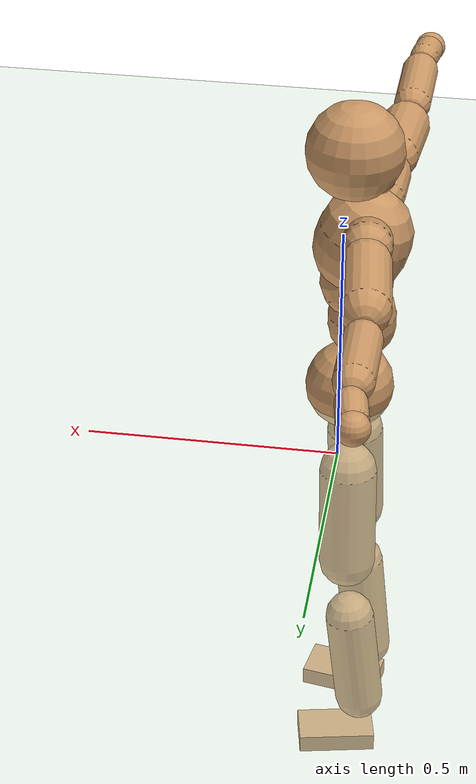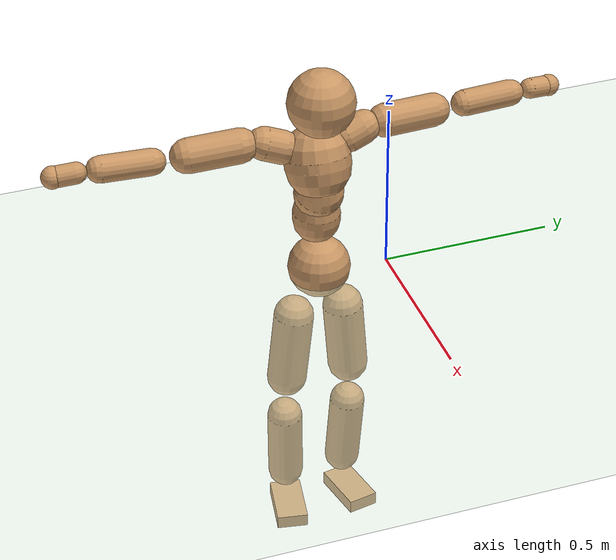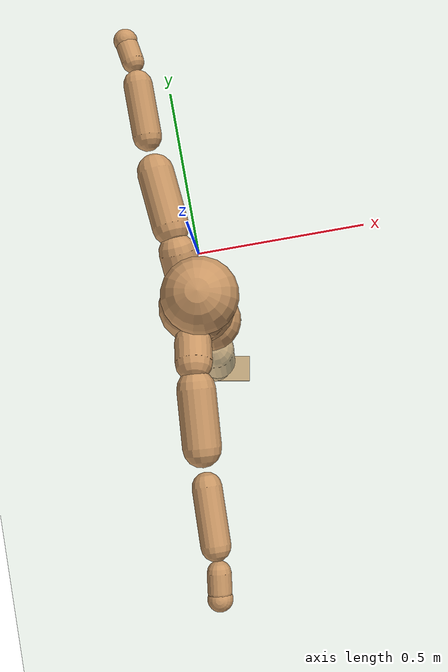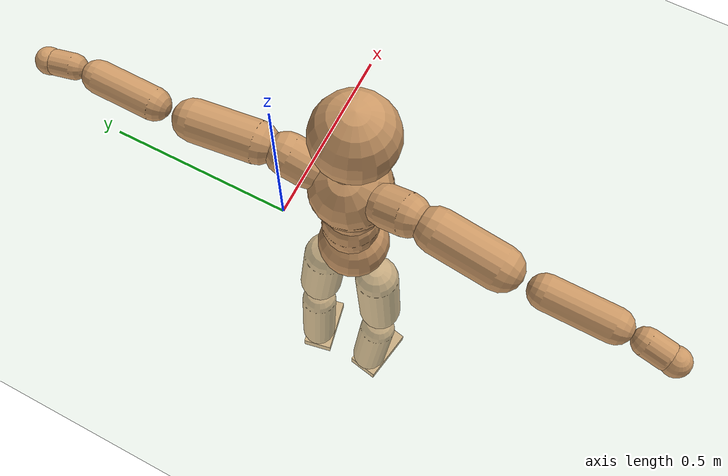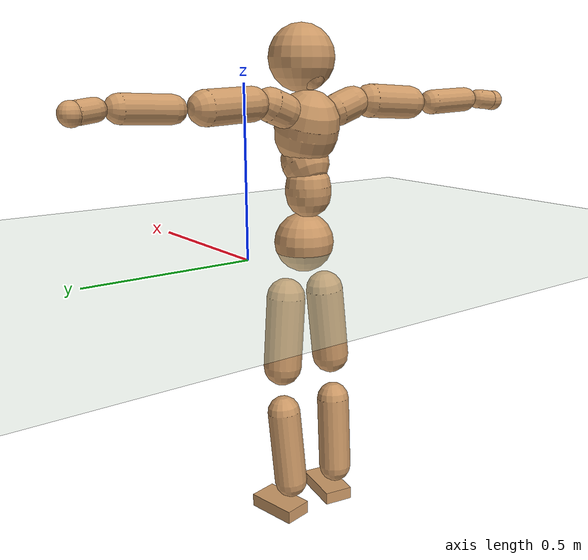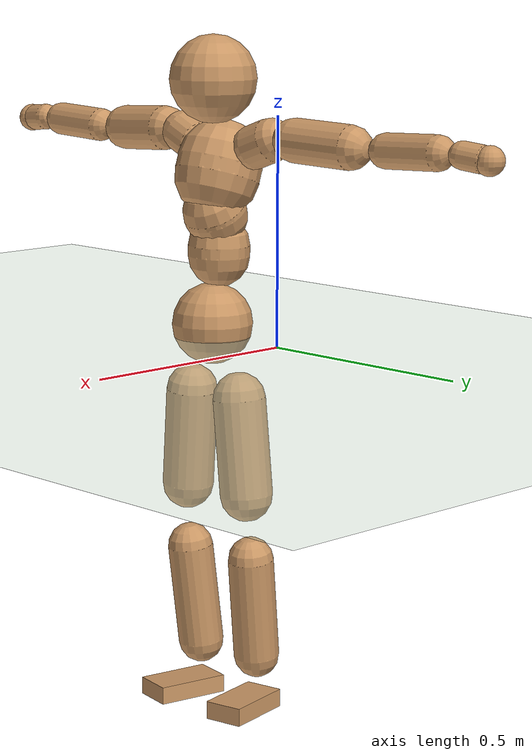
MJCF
<mujoco model="humanoid">
  <compiler coordinate="local"/>
  <default>
    <joint damping="0.0" armature="0.01" stiffness="0.0" limited="true"/>
    <geom conaffinity="1" condim="3" contype="7" margin="0.001" rgba="0.8 0.6 .4 1"/>
  </default>
  <asset>
    <texture type="skybox" builtin="gradient" rgb1=".4 .5 .6" rgb2="0 0 0" width="100" height="100"/>
    <texture builtin="flat" height="1278" mark="cross" markrgb="1 1 1" name="texgeom" random="0.01" rgb1="0.8 0.6 0.4" rgb2="0.8 0.6 0.4" type="cube" width="127"/>
    <texture builtin="checker" height="100" name="texplane" rgb1="0 0 0" rgb2="0.8 0.8 0.8" type="2d" width="100"/>
    <material name="MatPlane" reflectance="0.5" shininess="1" specular="1" texrepeat="60 60" texture="texplane"/>
    <material name="geom" texture="texgeom" texuniform="true"/>
  </asset>
  <worldbody>
    <light cutoff="100" diffuse="1 1 1" dir="-0 0 -1.3" directional="true" exponent="1" pos="0 0 1.3" specular=".1 .1 .1"/>
    <geom conaffinity="1" condim="3" name="floor" pos="0 0 0" rgba="0.8 0.9 0.8 1" size="100 100 .2" type="plane" material="MatPlane"/>
    <body name="Pelvis" pos="0.0005 -0.2044 0.028">
      <freejoint name="Pelvis"/>
      <geom type="sphere" contype="1" conaffinity="1" density="500" size="0.0906" pos="0.0000 0.0000 0.0000" name="Pelvis"/>
      <body name="L_Hip" pos="-0.008 0.0698 -0.0882">
        <joint name="L_Hip_x" type="hinge" pos="0 0 0" axis="1 0 0" stiffness="800" damping="80" armature="0.02" range="-180.0000 180.0000"/>
        <joint name="L_Hip_y" type="hinge" pos="0 0 0" axis="0 1 0" stiffness="800" damping="80" armature="0.02" range="-180.0000 180.0000"/>
        <joint name="L_Hip_z" type="hinge" pos="0 0 0" axis="0 0 1" stiffness="800" damping="80" armature="0.02" range="-180.0000 180.0000"/>
        <geom type="capsule" contype="1" conaffinity="1" density="500" fromto="-0.0016 0.0061 -0.0730 -0.0062 0.0245 -0.2919" size="0.059" name="L_Hip"/>
        <body name="L_Knee" pos="-0.0078 0.0307 -0.3649">
          <joint name="L_Knee_x" type="hinge" pos="0 0 0" axis="1 0 0" stiffness="800" damping="80" armature="0.02" range="-180.0000 180.0000"/>
          <joint name="L_Knee_y" type="hinge" pos="0 0 0" axis="0 1 0" stiffness="800" damping="80" armature="0.02" range="-180.0000 180.0000"/>
          <joint name="L_Knee_z" type="hinge" pos="0 0 0" axis="0 0 1" stiffness="800" damping="80" armature="0.02" range="-180.0000 180.0000"/>
          <geom type="capsule" contype="1" conaffinity="1" density="500" fromto="-0.0085 -0.0024 -0.0770 -0.0338 -0.0094 -0.3081" size="0.0514" name="L_Knee"/>
          <body name="L_Ankle" pos="-0.0423 -0.0118 -0.3852">
            <joint name="L_Ankle_x" type="hinge" pos="0 0 0" axis="1 0 0" stiffness="800" damping="80" armature="0.02" range="-180.0000 180.0000"/>
            <joint name="L_Ankle_y" type="hinge" pos="0 0 0" axis="0 1 0" stiffness="800" damping="80" armature="0.02" range="-180.0000 180.0000"/>
            <joint name="L_Ankle_z" type="hinge" pos="0 0 0" axis="0 0 1" stiffness="800" damping="80" armature="0.02" range="-180.0000 180.0000"/>
            <geom type="box" contype="1" conaffinity="1" density="500" pos="0.0571 0.0112 -0.0274" size="0.0814 0.0445 0.0203" quat="0.9953 0.0000 0.0000 0.0964" name="L_Ankle"/>
            <body name="L_Toe" pos="0.1142 0.0223 -0.0547">
              <joint name="L_Toe_x" type="hinge" pos="0 0 0" axis="1 0 0" stiffness="500" damping="50" armature="0.02" range="-180.0000 180.0000"/>
              <joint name="L_Toe_y" type="hinge" pos="0 0 0" axis="0 1 0" stiffness="500" damping="50" armature="0.02" range="-180.0000 180.0000"/>
              <joint name="L_Toe_z" type="hinge" pos="0 0 0" axis="0 0 1" stiffness="500" damping="50" armature="0.02" range="-180.0000 180.0000"/>
              <geom type="box" contype="1" conaffinity="1" density="500" pos="0.0000 0.0000 0.0267" size="0.0009 0.0022 0.001" quat="0.9947 0.0000 0.0000 0.1030" name="L_Toe"/>
            </body>
          </body>
        </body>
      </body>
      <body name="R_Hip" pos="-0.0045 -0.0676 -0.0876">
        <joint name="R_Hip_x" type="hinge" pos="0 0 0" axis="1 0 0" stiffness="800" damping="80" armature="0.02" range="-180.0000 180.0000"/>
        <joint name="R_Hip_y" type="hinge" pos="0 0 0" axis="0 1 0" stiffness="800" damping="80" armature="0.02" range="-180.0000 180.0000"/>
        <joint name="R_Hip_z" type="hinge" pos="0 0 0" axis="0 0 1" stiffness="800" damping="80" armature="0.02" range="-180.0000 180.0000"/>
        <geom type="capsule" contype="1" conaffinity="1" density="500" fromto="-0.0019 -0.0072 -0.0743 -0.0077 -0.0287 -0.2970" size="0.0583" name="R_Hip"/>
        <body name="R_Knee" pos="-0.0097 -0.0359 -0.3713">
          <joint name="R_Knee_x" type="hinge" pos="0 0 0" axis="1 0 0" stiffness="800" damping="80" armature="0.02" range="-180.0000 180.0000"/>
          <joint name="R_Knee_y" type="hinge" pos="0 0 0" axis="0 1 0" stiffness="800" damping="80" armature="0.02" range="-180.0000 180.0000"/>
          <joint name="R_Knee_z" type="hinge" pos="0 0 0" axis="0 0 1" stiffness="800" damping="80" armature="0.02" range="-180.0000 180.0000"/>
          <geom type="capsule" contype="1" conaffinity="1" density="500" fromto="-0.0082 0.0030 -0.0773 -0.0326 0.0118 -0.3093" size="0.0518" name="R_Knee"/>
          <body name="R_Ankle" pos="-0.0408 0.0148 -0.3866">
            <joint name="R_Ankle_x" type="hinge" pos="0 0 0" axis="1 0 0" stiffness="800" damping="80" armature="0.02" range="-180.0000 180.0000"/>
            <joint name="R_Ankle_y" type="hinge" pos="0 0 0" axis="0 1 0" stiffness="800" damping="80" armature="0.02" range="-180.0000 180.0000"/>
            <joint name="R_Ankle_z" type="hinge" pos="0 0 0" axis="0 0 1" stiffness="800" damping="80" armature="0.02" range="-180.0000 180.0000"/>
            <geom type="box" contype="1" conaffinity="1" density="500" pos="0.0589 -0.0107 -0.0232" size="0.083 0.0457 0.0199" quat="0.9960 0.0000 0.0000 -0.0896" name="R_Ankle"/>
            <body name="R_Toe" pos="0.1178 -0.0214 -0.0463">
              <joint name="R_Toe_x" type="hinge" pos="0 0 0" axis="1 0 0" stiffness="500" damping="50" armature="0.02" range="-180.0000 180.0000"/>
              <joint name="R_Toe_y" type="hinge" pos="0 0 0" axis="0 1 0" stiffness="500" damping="50" armature="0.02" range="-180.0000 180.0000"/>
              <joint name="R_Toe_z" type="hinge" pos="0 0 0" axis="0 0 1" stiffness="500" damping="50" armature="0.02" range="-180.0000 180.0000"/>
              <geom type="box" contype="1" conaffinity="1" density="500" pos="0.0000 0.0000 0.0246" size="0.0009 0.0023 0.0011" quat="0.9968 0.0000 0.0000 -0.0801" name="R_Toe"/>
            </body>
          </body>
        </body>
      </body>
      <body name="Torso" pos="-0.0207 -0.0019 0.1009">
        <joint name="Torso_x" type="hinge" pos="0 0 0" axis="1 0 0" stiffness="1000" damping="100" armature="0.02" range="-180.0000 180.0000"/>
        <joint name="Torso_y" type="hinge" pos="0 0 0" axis="0 1 0" stiffness="1000" damping="100" armature="0.02" range="-180.0000 180.0000"/>
        <joint name="Torso_z" type="hinge" pos="0 0 0" axis="0 0 1" stiffness="1000" damping="100" armature="0.02" range="-180.0000 180.0000"/>
        <geom type="capsule" contype="1" conaffinity="1" density="500" fromto="0.0001 0.0015 0.0721 0.0000 0.0010 0.0481" size="0.0689" name="Torso"/>
        <body name="Spine" pos="0.0001 0.0025 0.1202">
          <joint name="Spine_x" type="hinge" pos="0 0 0" axis="1 0 0" stiffness="1000" damping="100" armature="0.02" range="-180.0000 180.0000"/>
          <joint name="Spine_y" type="hinge" pos="0 0 0" axis="0 1 0" stiffness="1000" damping="100" armature="0.02" range="-180.0000 180.0000"/>
          <joint name="Spine_z" type="hinge" pos="0 0 0" axis="0 0 1" stiffness="1000" damping="100" armature="0.02" range="-180.0000 180.0000"/>
          <geom type="capsule" contype="1" conaffinity="1" density="500" fromto="0.0156 0.0012 0.0288 0.0104 0.0008 0.0192" size="0.0712" name="Spine"/>
          <body name="Chest" pos="0.026 0.002 0.048">
            <joint name="Chest_x" type="hinge" pos="0 0 0" axis="1 0 0" stiffness="1000" damping="100" armature="0.02" range="-180.0000 180.0000"/>
            <joint name="Chest_y" type="hinge" pos="0 0 0" axis="0 1 0" stiffness="1000" damping="100" armature="0.02" range="-180.0000 180.0000"/>
            <joint name="Chest_z" type="hinge" pos="0 0 0" axis="0 0 1" stiffness="1000" damping="100" armature="0.02" range="-180.0000 180.0000"/>
            <geom type="capsule" contype="1" conaffinity="1" density="500" fromto="-0.0278 -0.0007 0.0892 -0.0185 -0.0005 0.0595" size="0.0948" name="Chest"/>
            <body name="Neck" pos="-0.0542 -0.0012 0.2101">
              <joint name="Neck_x" type="hinge" pos="0 0 0" axis="1 0 0" stiffness="500" damping="50" armature="0.02" range="-180.0000 180.0000"/>
              <joint name="Neck_y" type="hinge" pos="0 0 0" axis="0 1 0" stiffness="500" damping="50" armature="0.02" range="-180.0000 180.0000"/>
              <joint name="Neck_z" type="hinge" pos="0 0 0" axis="0 0 1" stiffness="500" damping="50" armature="0.02" range="-180.0000 180.0000"/>
              <geom type="capsule" contype="1" conaffinity="1" density="500" fromto="0.0101 0.0010 0.0122 0.0404 0.0038 0.0487" size="0.0405" name="Neck"/>
              <body name="Head" pos="0.0505 0.0048 0.0608">
                <joint name="Head_x" type="hinge" pos="0 0 0" axis="1 0 0" stiffness="500" damping="50" armature="0.02" range="-180.0000 180.0000"/>
                <joint name="Head_y" type="hinge" pos="0 0 0" axis="0 1 0" stiffness="500" damping="50" armature="0.02" range="-180.0000 180.0000"/>
                <joint name="Head_z" type="hinge" pos="0 0 0" axis="0 0 1" stiffness="500" damping="50" armature="0.02" range="-180.0000 180.0000"/>
                <geom type="sphere" contype="1" conaffinity="1" density="500" size="0.0970" pos="0.0000 0.0000 0.0000" name="Head"/>
              </body>
            </body>
            <body name="L_Thorax" pos="-0.0398 0.0742 0.1191">
              <joint name="L_Thorax_x" type="hinge" pos="0 0 0" axis="1 0 0" stiffness="500" damping="50" armature="0.02" range="-180.0000 180.0000"/>
              <joint name="L_Thorax_y" type="hinge" pos="0 0 0" axis="0 1 0" stiffness="500" damping="50" armature="0.02" range="-180.0000 180.0000"/>
              <joint name="L_Thorax_z" type="hinge" pos="0 0 0" axis="0 0 1" stiffness="500" damping="50" armature="0.02" range="-180.0000 180.0000"/>
              <geom type="capsule" contype="1" conaffinity="1" density="500" fromto="-0.0012 0.0167 0.0061 -0.0049 0.0666 0.0245" size="0.0488" name="L_Thorax"/>
              <body name="L_Shoulder" pos="-0.0061 0.0833 0.0306">
                <joint name="L_Shoulder_x" type="hinge" pos="0 0 0" axis="1 0 0" stiffness="500" damping="50" armature="0.02" range="-720.0000 720.0000"/>
                <joint name="L_Shoulder_y" type="hinge" pos="0 0 0" axis="0 1 0" stiffness="500" damping="50" armature="0.02" range="-720.0000 720.0000"/>
                <joint name="L_Shoulder_z" type="hinge" pos="0 0 0" axis="0 0 1" stiffness="500" damping="50" armature="0.02" range="-720.0000 720.0000"/>
                <geom type="capsule" contype="1" conaffinity="1" density="500" fromto="-0.0049 0.0499 -0.0020 -0.0197 0.1997 -0.0079" size="0.0483" name="L_Shoulder"/>
                <body name="L_Elbow" pos="-0.0246 0.2497 -0.0099">
                  <joint name="L_Elbow_x" type="hinge" pos="0 0 0" axis="1 0 0" stiffness="500" damping="50" armature="0.02" range="-720.0000 720.0000"/>
                  <joint name="L_Elbow_y" type="hinge" pos="0 0 0" axis="0 1 0" stiffness="500" damping="50" armature="0.02" range="-720.0000 720.0000"/>
                  <joint name="L_Elbow_z" type="hinge" pos="0 0 0" axis="0 0 1" stiffness="500" damping="50" armature="0.02" range="-720.0000 720.0000"/>
                  <geom type="capsule" contype="1" conaffinity="1" density="500" fromto="-0.0002 0.0468 0.0018 -0.0007 0.1871 0.0073" size="0.0378" name="L_Elbow"/>
                  <body name="L_Wrist" pos="-0.0008 0.2339 0.0091">
                    <joint name="L_Wrist_x" type="hinge" pos="0 0 0" axis="1 0 0" stiffness="300" damping="30" armature="0.02" range="-180.0000 180.0000"/>
                    <joint name="L_Wrist_y" type="hinge" pos="0 0 0" axis="0 1 0" stiffness="300" damping="30" armature="0.02" range="-180.0000 180.0000"/>
                    <joint name="L_Wrist_z" type="hinge" pos="0 0 0" axis="0 0 1" stiffness="300" damping="30" armature="0.02" range="-180.0000 180.0000"/>
                    <geom type="capsule" contype="1" conaffinity="1" density="500" fromto="-0.0026 0.0155 -0.0019 -0.0103 0.0620 -0.0074" size="0.0294" name="L_Wrist"/>
                    <body name="L_Hand" pos="-0.0129 0.0776 -0.0093">
                      <joint name="L_Hand_x" type="hinge" pos="0 0 0" axis="1 0 0" stiffness="300" damping="30" armature="0.02" range="-180.0000 180.0000"/>
                      <joint name="L_Hand_y" type="hinge" pos="0 0 0" axis="0 1 0" stiffness="300" damping="30" armature="0.02" range="-180.0000 180.0000"/>
                      <joint name="L_Hand_z" type="hinge" pos="0 0 0" axis="0 0 1" stiffness="300" damping="30" armature="0.02" range="-180.0000 180.0000"/>
                      <geom type="sphere" contype="1" conaffinity="1" density="500" size="0.0313" pos="0.0000 0.0000 0.0000" name="L_Hand"/>
                    </body>
                  </body>
                </body>
              </body>
            </body>
            <body name="R_Thorax" pos="-0.0448 -0.0765 0.117">
              <joint name="R_Thorax_x" type="hinge" pos="0 0 0" axis="1 0 0" stiffness="500" damping="50" armature="0.02" range="-180.0000 180.0000"/>
              <joint name="R_Thorax_y" type="hinge" pos="0 0 0" axis="0 1 0" stiffness="500" damping="50" armature="0.02" range="-180.0000 180.0000"/>
              <joint name="R_Thorax_z" type="hinge" pos="0 0 0" axis="0 0 1" stiffness="500" damping="50" armature="0.02" range="-180.0000 180.0000"/>
              <geom type="capsule" contype="1" conaffinity="1" density="500" fromto="-0.0019 -0.0175 0.0067 -0.0076 -0.0701 0.0266" size="0.0483" name="R_Thorax"/>
              <body name="R_Shoulder" pos="-0.0094 -0.0876 0.0333">
                <joint name="R_Shoulder_x" type="hinge" pos="0 0 0" axis="1 0 0" stiffness="500" damping="50" armature="0.02" range="-720.0000 720.0000"/>
                <joint name="R_Shoulder_y" type="hinge" pos="0 0 0" axis="0 1 0" stiffness="500" damping="50" armature="0.02" range="-720.0000 720.0000"/>
                <joint name="R_Shoulder_z" type="hinge" pos="0 0 0" axis="0 0 1" stiffness="500" damping="50" armature="0.02" range="-720.0000 720.0000"/>
                <geom type="capsule" contype="1" conaffinity="1" density="500" fromto="-0.0037 -0.0493 -0.0028 -0.0148 -0.1974 -0.0111" size="0.0503" name="R_Shoulder"/>
                <body name="R_Elbow" pos="-0.0185 -0.2467 -0.0139">
                  <joint name="R_Elbow_x" type="hinge" pos="0 0 0" axis="1 0 0" stiffness="500" damping="50" armature="0.02" range="-720.0000 720.0000"/>
                  <joint name="R_Elbow_y" type="hinge" pos="0 0 0" axis="0 1 0" stiffness="500" damping="50" armature="0.02" range="-720.0000 720.0000"/>
                  <joint name="R_Elbow_z" type="hinge" pos="0 0 0" axis="0 0 1" stiffness="500" damping="50" armature="0.02" range="-720.0000 720.0000"/>
                  <geom type="capsule" contype="1" conaffinity="1" density="500" fromto="-0.0010 -0.0490 0.0018 -0.0039 -0.1960 0.0071" size="0.0383" name="R_Elbow"/>
                  <body name="R_Wrist" pos="-0.0049 -0.245 0.0089">
                    <joint name="R_Wrist_x" type="hinge" pos="0 0 0" axis="1 0 0" stiffness="300" damping="30" armature="0.02" range="-180.0000 180.0000"/>
                    <joint name="R_Wrist_y" type="hinge" pos="0 0 0" axis="0 1 0" stiffness="300" damping="30" armature="0.02" range="-180.0000 180.0000"/>
                    <joint name="R_Wrist_z" type="hinge" pos="0 0 0" axis="0 0 1" stiffness="300" damping="30" armature="0.02" range="-180.0000 180.0000"/>
                    <geom type="capsule" contype="1" conaffinity="1" density="500" fromto="-0.0021 -0.0160 -0.0014 -0.0083 -0.0640 -0.0058" size="0.0307" name="R_Wrist"/>
                    <body name="R_Hand" pos="-0.0104 -0.0801 -0.0072">
                      <joint name="R_Hand_x" type="hinge" pos="0 0 0" axis="1 0 0" stiffness="300" damping="30" armature="0.02" range="-180.0000 180.0000"/>
                      <joint name="R_Hand_y" type="hinge" pos="0 0 0" axis="0 1 0" stiffness="300" damping="30" armature="0.02" range="-180.0000 180.0000"/>
                      <joint name="R_Hand_z" type="hinge" pos="0 0 0" axis="0 0 1" stiffness="300" damping="30" armature="0.02" range="-180.0000 180.0000"/>
                      <geom type="sphere" contype="1" conaffinity="1" density="500" size="0.0322" pos="0.0000 0.0000 0.0000" name="R_Hand"/>
                    </body>
                  </body>
                </body>
              </body>
            </body>
          </body>
        </body>
      </body>
    </body>
  </worldbody>
  <actuator>
    <motor name="L_Hip_x" joint="L_Hip_x" gear="500"/>
    <motor name="L_Hip_y" joint="L_Hip_y" gear="500"/>
    <motor name="L_Hip_z" joint="L_Hip_z" gear="500"/>
    <motor name="L_Knee_x" joint="L_Knee_x" gear="500"/>
    <motor name="L_Knee_y" joint="L_Knee_y" gear="500"/>
    <motor name="L_Knee_z" joint="L_Knee_z" gear="500"/>
    <motor name="L_Ankle_x" joint="L_Ankle_x" gear="500"/>
    <motor name="L_Ankle_y" joint="L_Ankle_y" gear="500"/>
    <motor name="L_Ankle_z" joint="L_Ankle_z" gear="500"/>
    <motor name="L_Toe_x" joint="L_Toe_x" gear="500"/>
    <motor name="L_Toe_y" joint="L_Toe_y" gear="500"/>
    <motor name="L_Toe_z" joint="L_Toe_z" gear="500"/>
    <motor name="R_Hip_x" joint="R_Hip_x" gear="500"/>
    <motor name="R_Hip_y" joint="R_Hip_y" gear="500"/>
    <motor name="R_Hip_z" joint="R_Hip_z" gear="500"/>
    <motor name="R_Knee_x" joint="R_Knee_x" gear="500"/>
    <motor name="R_Knee_y" joint="R_Knee_y" gear="500"/>
    <motor name="R_Knee_z" joint="R_Knee_z" gear="500"/>
    <motor name="R_Ankle_x" joint="R_Ankle_x" gear="500"/>
    <motor name="R_Ankle_y" joint="R_Ankle_y" gear="500"/>
    <motor name="R_Ankle_z" joint="R_Ankle_z" gear="500"/>
    <motor name="R_Toe_x" joint="R_Toe_x" gear="500"/>
    <motor name="R_Toe_y" joint="R_Toe_y" gear="500"/>
    <motor name="R_Toe_z" joint="R_Toe_z" gear="500"/>
    <motor name="Torso_x" joint="Torso_x" gear="500"/>
    <motor name="Torso_y" joint="Torso_y" gear="500"/>
    <motor name="Torso_z" joint="Torso_z" gear="500"/>
    <motor name="Spine_x" joint="Spine_x" gear="500"/>
    <motor name="Spine_y" joint="Spine_y" gear="500"/>
    <motor name="Spine_z" joint="Spine_z" gear="500"/>
    <motor name="Chest_x" joint="Chest_x" gear="500"/>
    <motor name="Chest_y" joint="Chest_y" gear="500"/>
    <motor name="Chest_z" joint="Chest_z" gear="500"/>
    <motor name="Neck_x" joint="Neck_x" gear="500"/>
    <motor name="Neck_y" joint="Neck_y" gear="500"/>
    <motor name="Neck_z" joint="Neck_z" gear="500"/>
    <motor name="Head_x" joint="Head_x" gear="500"/>
    <motor name="Head_y" joint="Head_y" gear="500"/>
    <motor name="Head_z" joint="Head_z" gear="500"/>
    <motor name="L_Thorax_x" joint="L_Thorax_x" gear="500"/>
    <motor name="L_Thorax_y" joint="L_Thorax_y" gear="500"/>
    <motor name="L_Thorax_z" joint="L_Thorax_z" gear="500"/>
    <motor name="L_Shoulder_x" joint="L_Shoulder_x" gear="500"/>
    <motor name="L_Shoulder_y" joint="L_Shoulder_y" gear="500"/>
    <motor name="L_Shoulder_z" joint="L_Shoulder_z" gear="500"/>
    <motor name="L_Elbow_x" joint="L_Elbow_x" gear="500"/>
    <motor name="L_Elbow_y" joint="L_Elbow_y" gear="500"/>
    <motor name="L_Elbow_z" joint="L_Elbow_z" gear="500"/>
    <motor name="L_Wrist_x" joint="L_Wrist_x" gear="500"/>
    <motor name="L_Wrist_y" joint="L_Wrist_y" gear="500"/>
    <motor name="L_Wrist_z" joint="L_Wrist_z" gear="500"/>
    <motor name="L_Hand_x" joint="L_Hand_x" gear="500"/>
    <motor name="L_Hand_y" joint="L_Hand_y" gear="500"/>
    <motor name="L_Hand_z" joint="L_Hand_z" gear="500"/>
    <motor name="R_Thorax_x" joint="R_Thorax_x" gear="500"/>
    <motor name="R_Thorax_y" joint="R_Thorax_y" gear="500"/>
    <motor name="R_Thorax_z" joint="R_Thorax_z" gear="500"/>
    <motor name="R_Shoulder_x" joint="R_Shoulder_x" gear="500"/>
    <motor name="R_Shoulder_y" joint="R_Shoulder_y" gear="500"/>
    <motor name="R_Shoulder_z" joint="R_Shoulder_z" gear="500"/>
    <motor name="R_Elbow_x" joint="R_Elbow_x" gear="500"/>
    <motor name="R_Elbow_y" joint="R_Elbow_y" gear="500"/>
    <motor name="R_Elbow_z" joint="R_Elbow_z" gear="500"/>
    <motor name="R_Wrist_x" joint="R_Wrist_x" gear="500"/>
    <motor name="R_Wrist_y" joint="R_Wrist_y" gear="500"/>
    <motor name="R_Wrist_z" joint="R_Wrist_z" gear="500"/>
    <motor name="R_Hand_x" joint="R_Hand_x" gear="500"/>
    <motor name="R_Hand_y" joint="R_Hand_y" gear="500"/>
    <motor name="R_Hand_z" joint="R_Hand_z" gear="500"/>
  </actuator>
  <contact>
    <exclude body1="Torso" body2="Chest"/>
    <exclude body1="Head" body2="Chest"/>
    <exclude body1="R_Knee" body2="R_Toe"/>
    <exclude body1="R_Knee" body2="L_Ankle"/>
    <exclude body1="R_Knee" body2="L_Toe"/>
    <exclude body1="L_Knee" body2="L_Toe"/>
    <exclude body1="L_Knee" body2="R_Ankle"/>
    <exclude body1="L_Knee" body2="R_Toe"/>
    <exclude body1="L_Shoulder" body2="Chest"/>
    <exclude body1="R_Shoulder" body2="Chest"/>
  </contact>
  <sensor/>
  <size njmax="700" nconmax="700"/>
</mujoco>
